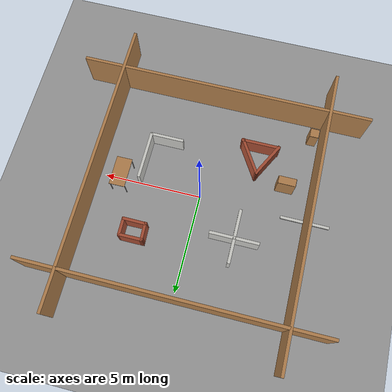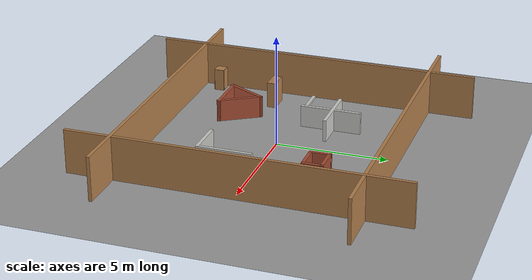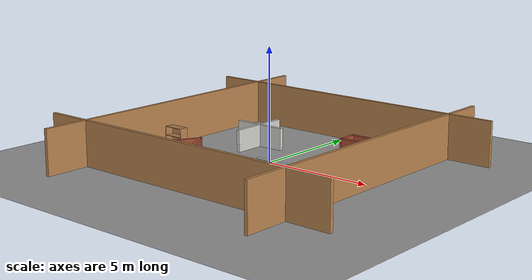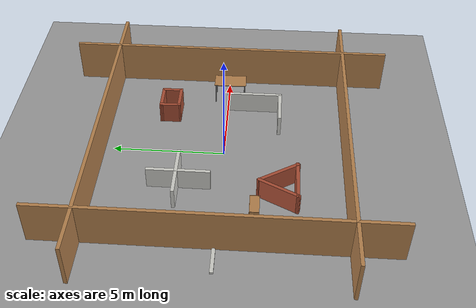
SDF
<sdf version="1.6">
 <world name="default">
  <light name="sun" type="directional">
   <pose>0 0 10 0 -0 0</pose>
   <diffuse>0.8 0.8 0.8 1</diffuse>
   <specular>0.2 0.2 0.2 1</specular>
   <attenuation>
    <range>1000</range>
    <constant>0.9</constant>
    <linear>0.01</linear>
    <quadratic>0.001</quadratic>
   </attenuation>
   <direction>0.5 0.1 -0.9</direction>
  </light>
  <scene><ambient>0.4 0.4 0.4 1</ambient><background>0.7 0.7 0.7 1</background><shadows>1</shadows></scene>
  <physics name="default_physics" default="0" type="ode">
   <max_step_size>0.01</max_step_size>
   <real_time_factor>1</real_time_factor>
   <real_time_update_rate>100</real_time_update_rate>
  </physics>
  <model name="ground_plane_0">
   <static>1</static>
   <link name="link">
    <collision name="collision">
     <geometry><plane><normal>0 0 1</normal><size>100 100</size></plane></geometry>
     <surface><friction><ode><mu>100</mu><mu2>50</mu2></ode></friction></surface>
    </collision>
    <visual name="visual">
     <cast_shadows>0</cast_shadows>
     <geometry><plane><normal>0 0 1</normal><size>100 100</size></plane></geometry>
     <material>
      <script><uri>file://media/materials/scripts/gazebo.material</uri><name>Gazebo/Grey</name></script>
     </material>
    </visual>
    <velocity_decay><linear>0</linear><angular>0</angular></velocity_decay>
   </link>
   <pose>0.497681 0 0 0 -0 0</pose>
  </model>
  <gravity>0 0 -9.8</gravity>
  <magnetic_field>6e-06 2.3e-05 -4.2e-05</magnetic_field>
  <atmosphere type="adiabatic"/>
  <spherical_coordinates>
   <surface_model>EARTH_WGS84</surface_model>
   <latitude_deg>0</latitude_deg>
   <longitude_deg>0</longitude_deg>
   <elevation>0</elevation>
   <heading_deg>0</heading_deg>
  </spherical_coordinates>
  <model name="Untitled">
   <pose>-0.03799 0.0344 0 0 -0 0</pose>
   <link name="Wall_11">
    <collision name="Wall_11_Collision">
     <geometry><box><size>2.5 0.15 1</size></box></geometry>
     <pose>0 0 0.5 0 -0 0</pose>
    </collision>
    <visual name="Wall_11_Visual">
     <pose>0 0 0.5 0 -0 0</pose>
     <geometry><box><size>2.5 0.15 1</size></box></geometry>
     <material>
      <script><uri>file://media/materials/scripts/gazebo.material</uri><name>Gazebo/CeilingTiled</name></script>
      <ambient>1 1 1 1</ambient>
     </material>
     <meta><layer>0</layer></meta>
    </visual>
    <pose>-2.152 1.857 0 0 -0 0</pose>
   </link>
   <link name="Wall_13">
    <collision name="Wall_13_Collision">
     <geometry><box><size>2.75 0.15 1</size></box></geometry>
     <pose>0 0 0.5 0 -0 0</pose>
    </collision>
    <visual name="Wall_13_Visual">
     <pose>0 0 0.5 0 -0 0</pose>
     <geometry><box><size>2.75 0.15 1</size></box></geometry>
     <material>
      <script><uri>file://media/materials/scripts/gazebo.material</uri><name>Gazebo/CeilingTiled</name></script>
      <ambient>1 1 1 1</ambient>
     </material>
     <meta><layer>0</layer></meta>
    </visual>
    <pose>-2.155 1.764 0 0 0 -1.5708</pose>
   </link>
   <link name="Wall_15">
    <collision name="Wall_15_Collision">
     <geometry><box><size>1.2678 0.15 1</size></box></geometry>
     <pose>0 0 0.5 0 -0 0</pose>
    </collision>
    <visual name="Wall_15_Visual">
     <pose>0 0 0.5 0 -0 0</pose>
     <geometry><box><size>1.2678 0.15 1</size></box></geometry>
     <material>
      <script><uri>file://media/materials/scripts/gazebo.material</uri><name>Gazebo/Bricks</name></script>
      <ambient>1 1 1 1</ambient>
     </material>
     <meta><layer>0</layer></meta>
    </visual>
    <pose>2.724 3.029 0 0 -0 0</pose>
   </link>
   <link name="Wall_16">
    <collision name="Wall_16_Collision">
     <geometry><box><size>0.965005 0.15 1</size></box></geometry>
     <pose>0 0 0.5 0 -0 0</pose>
    </collision>
    <visual name="Wall_16_Visual">
     <pose>0 0 0.5 0 -0 0</pose>
     <geometry><box><size>0.965005 0.15 1</size></box></geometry>
     <material>
      <script><uri>file://media/materials/scripts/gazebo.material</uri><name>Gazebo/Bricks</name></script>
      <ambient>1 1 1 1</ambient>
     </material>
     <meta><layer>0</layer></meta>
    </visual>
    <pose>3.2915 2.6215 0 0 0 -1.54994</pose>
   </link>
   <link name="Wall_17">
    <collision name="Wall_17_Collision">
     <geometry><box><size>1.25 0.15 1</size></box></geometry>
     <pose>0 0 0.5 0 -0 0</pose>
    </collision>
    <visual name="Wall_17_Visual">
     <pose>0 0 0.5 0 -0 0</pose>
     <geometry><box><size>1.25 0.15 1</size></box></geometry>
     <material>
      <script><uri>file://media/materials/scripts/gazebo.material</uri><name>Gazebo/Bricks</name></script>
      <ambient>1 1 1 1</ambient>
     </material>
     <meta><layer>0</layer></meta>
    </visual>
    <pose>2.75 2.214 0 0 -0 3.14159</pose>
   </link>
   <link name="Wall_18">
    <collision name="Wall_18_Collision">
     <geometry><box><size>0.965005 0.15 1</size></box></geometry>
     <pose>0 0 0.5 0 -0 0</pose>
    </collision>
    <visual name="Wall_18_Visual">
     <pose>0 0 0.5 0 -0 0</pose>
     <geometry><box><size>0.965005 0.15 1</size></box></geometry>
     <material>
      <script><uri>file://media/materials/scripts/gazebo.material</uri><name>Gazebo/Bricks</name></script>
      <ambient>1 1 1 1</ambient>
     </material>
     <meta><layer>0</layer></meta>
    </visual>
    <pose>2.1825 2.6215 0 0 -0 1.61372</pose>
   </link>
   <link name="Wall_24">
    <collision name="Wall_24_Collision">
     <geometry><box><size>1.97704 0.15 1</size></box></geometry>
     <pose>0 0 0.5 0 -0 0</pose>
    </collision>
    <visual name="Wall_24_Visual">
     <pose>0 0 0.5 0 -0 0</pose>
     <geometry><box><size>1.97704 0.15 1</size></box></geometry>
     <material>
      <script><uri>file://media/materials/scripts/gazebo.material</uri><name>Gazebo/Bricks</name></script>
      <ambient>1 1 1 1</ambient>
     </material>
     <meta><layer>0</layer></meta>
    </visual>
    <pose>-2.89576 -2.49088 0 0 -0 1.09459</pose>
   </link>
   <link name="Wall_25">
    <collision name="Wall_25_Collision">
     <geometry><box><size>2.06356 0.15 1</size></box></geometry>
     <pose>0 0 0.5 0 -0 0</pose>
    </collision>
    <visual name="Wall_25_Visual">
     <pose>0 0 0.5 0 -0 0</pose>
     <geometry><box><size>2.06356 0.15 1</size></box></geometry>
     <material>
      <script><uri>file://media/materials/scripts/gazebo.material</uri><name>Gazebo/Bricks</name></script>
      <ambient>1 1 1 1</ambient>
     </material>
     <meta><layer>0</layer></meta>
    </visual>
    <pose>-1.97077 -2.49088 0 0 0 -1.01325</pose>
   </link>
   <link name="Wall_26">
    <collision name="Wall_26_Collision">
     <geometry><box><size>2 0.15 1</size></box></geometry>
     <pose>0 0 0.5 0 -0 0</pose>
    </collision>
    <visual name="Wall_26_Visual">
     <pose>0 0 0.5 0 -0 0</pose>
     <geometry><box><size>2 0.15 1</size></box></geometry>
     <material>
      <script><uri>file://media/materials/scripts/gazebo.material</uri><name>Gazebo/Bricks</name></script>
      <ambient>1 1 1 1</ambient>
     </material>
     <meta><layer>0</layer></meta>
    </visual>
    <pose>-2.38953 -3.28527 0 0 -0 3.14159</pose>
   </link>
   <link name="Wall_28">
    <collision name="Wall_28_Collision">
     <geometry><box><size>1.75 0.15 1</size></box></geometry>
     <pose>0 0 0.5 0 -0 0</pose>
    </collision>
    <visual name="Wall_28_Visual">
     <pose>0 0 0.5 0 -0 0</pose>
     <geometry><box><size>1.75 0.15 1</size></box></geometry>
     <material>
      <script><uri>file://media/materials/scripts/gazebo.material</uri><name>Gazebo/CeilingTiled</name></script>
      <ambient>1 1 1 1</ambient>
     </material>
     <meta><layer>0</layer></meta>
    </visual>
    <pose>2.38813 -2.48047 0 0 -0 0</pose>
   </link>
   <link name="Wall_29">
    <collision name="Wall_29_Collision">
     <geometry><box><size>2.5 0.15 1</size></box></geometry>
     <pose>0 0 0.5 0 -0 0</pose>
    </collision>
    <visual name="Wall_29_Visual">
     <pose>0 0 0.5 0 -0 0</pose>
     <geometry><box><size>2.5 0.15 1</size></box></geometry>
     <material>
      <script><uri>file://media/materials/scripts/gazebo.material</uri><name>Gazebo/CeilingTiled</name></script>
      <ambient>1 1 1 1</ambient>
     </material>
     <meta><layer>0</layer></meta>
    </visual>
    <pose>3.20562 -1.28798 0 0 -0 1.5708</pose>
   </link>
   <link name="Wall_6">
    <collision name="Wall_6_Collision">
     <geometry><box><size>15 0.15 2</size></box></geometry>
     <pose>0 0 1 0 -0 0</pose>
    </collision>
    <visual name="Wall_6_Visual">
     <pose>0 0 1 0 -0 0</pose>
     <geometry><box><size>15 0.15 2</size></box></geometry>
     <material>
      <script><uri>file://media/materials/scripts/gazebo.material</uri><name>Gazebo/Wood</name></script>
      <ambient>1 1 1 1</ambient>
     </material>
     <meta><layer>0</layer></meta>
    </visual>
    <pose>0 5.425 0 0 -0 0</pose>
   </link>
   <link name="Wall_7">
    <collision name="Wall_7_Collision">
     <geometry><box><size>15 0.15 2</size></box></geometry>
     <pose>0 0 1 0 -0 0</pose>
    </collision>
    <visual name="Wall_7_Visual">
     <pose>0 0 1 0 -0 0</pose>
     <geometry><box><size>15 0.15 2</size></box></geometry>
     <material>
      <script><uri>file://media/materials/scripts/gazebo.material</uri><name>Gazebo/Wood</name></script>
      <ambient>1 1 1 1</ambient>
     </material>
     <meta><layer>0</layer></meta>
    </visual>
    <pose>5.425 0 0 0 0 -1.5708</pose>
   </link>
   <link name="Wall_8">
    <collision name="Wall_8_Collision">
     <geometry><box><size>15 0.15 2</size></box></geometry>
     <pose>0 0 1 0 -0 0</pose>
    </collision>
    <visual name="Wall_8_Visual">
     <pose>0 0 1 0 -0 0</pose>
     <geometry><box><size>15 0.15 2</size></box></geometry>
     <material>
      <script><uri>file://media/materials/scripts/gazebo.material</uri><name>Gazebo/Wood</name></script>
      <ambient>1 1 1 1</ambient>
     </material>
     <meta><layer>0</layer></meta>
    </visual>
    <pose>0 -5.425 0 0 -0 3.14159</pose>
   </link>
   <link name="Wall_9">
    <collision name="Wall_9_Collision">
     <geometry><box><size>15 0.15 2</size></box></geometry>
     <pose>0 0 1 0 -0 0</pose>
    </collision>
    <visual name="Wall_9_Visual">
     <pose>0 0 1 0 -0 0</pose>
     <geometry><box><size>15 0.15 2</size></box></geometry>
     <material>
      <script><uri>file://media/materials/scripts/gazebo.material</uri><name>Gazebo/Wood</name></script>
      <ambient>1 1 1 1</ambient>
     </material>
     <meta><layer>0</layer></meta>
    </visual>
    <pose>-5.425 0 0 0 -0 1.5708</pose>
   </link>
   <link name="Wall_2">
    <collision name="Wall_2_Collision"><geometry><box><size>0.15 2.5 0.15</size></box></geometry></collision>
    <visual name="Wall_2_Visual">
     <geometry><box><size>0.15 2.5 0.15</size></box></geometry>
     <material>
      <script><uri>file://media/materials/scripts/gazebo.material</uri><name>Gazebo/CeilingTiled</name></script>
      <ambient>1 1 1 1</ambient>
     </material>
     <meta><layer>0</layer></meta>
    </visual>
    <pose>-5.425 0 0 0 -0 1.5708</pose>
   </link>
   <static>1</static>
  </model>
  <model name="cabinet">
   <static>1</static>
   <link name="cabinet_bottom_plate">
    <inertial>
     <pose>0 0 -1 0 -0 0</pose>
     <inertia><ixx>2.05</ixx><ixy>0</ixy><ixz>0</ixz><iyy>2.05</iyy><iyz>0</iyz><izz>2.05</izz></inertia>
     <mass>25</mass>
    </inertial>
    <collision name="cabinet_bottom_plate_geom">
     <pose>0 0 0.01 0 -0 0</pose>
     <geometry><box><size>0.45 0.45 0.02</size></box></geometry>
    </collision>
    <visual name="cabinet_bottom_plate_geom_visual">
     <pose>0 0 0.01 0 -0 0</pose>
     <geometry><box><size>0.45 0.45 0.02</size></box></geometry>
     <material>
      <script><uri>file://media/materials/scripts/gazebo.material</uri><name>Gazebo/Wood</name></script>
     </material>
    </visual>
    <collision name="cabinet_bottom_plate_geom_cabinet_back_plate">
     <pose>0.235 0 0.51 0 -0 0</pose>
     <geometry><box><size>0.02 0.45 1.02</size></box></geometry>
    </collision>
    <visual name="cabinet_bottom_plate_geom_cabinet_back_plate_visual">
     <pose>0.235 0 0.51 0 -0 0</pose>
     <geometry><box><size>0.02 0.45 1.02</size></box></geometry>
     <material>
      <script><uri>file://media/materials/scripts/gazebo.material</uri><name>Gazebo/Wood</name></script>
     </material>
    </visual>
    <collision name="cabinet_bottom_plate_geom_cabinet_left_plate">
     <pose>0 0.235 0.51 0 -0 0</pose>
     <geometry><box><size>0.45 0.02 1.02</size></box></geometry>
    </collision>
    <visual name="cabinet_bottom_plate_geom_cabinet_left_plate_visual">
     <pose>0 0.235 0.51 0 -0 0</pose>
     <geometry><box><size>0.45 0.02 1.02</size></box></geometry>
     <material>
      <script><uri>file://media/materials/scripts/gazebo.material</uri><name>Gazebo/Wood</name></script>
     </material>
    </visual>
    <collision name="cabinet_bottom_plate_geom_cabinet_middle_plate">
     <pose>0 0 0.51 0 -0 0</pose>
     <geometry><box><size>0.45 0.45 0.02</size></box></geometry>
    </collision>
    <visual name="cabinet_bottom_plate_geom_cabinet_middle_plate_visual">
     <pose>0 0 0.51 0 -0 0</pose>
     <geometry><box><size>0.45 0.45 0.02</size></box></geometry>
     <material>
      <script><uri>file://media/materials/scripts/gazebo.material</uri><name>Gazebo/Wood</name></script>
     </material>
    </visual>
    <collision name="cabinet_bottom_plate_geom_cabinet_right_plate">
     <pose>0 -0.235 0.51 0 -0 0</pose>
     <geometry><box><size>0.45 0.02 1.02</size></box></geometry>
    </collision>
    <visual name="cabinet_bottom_plate_geom_cabinet_right_plate_visual">
     <pose>0 -0.235 0.51 0 -0 0</pose>
     <geometry><box><size>0.45 0.02 1.02</size></box></geometry>
     <material>
      <script><uri>file://media/materials/scripts/gazebo.material</uri><name>Gazebo/Wood</name></script>
     </material>
    </visual>
    <collision name="cabinet_bottom_plate_geom_cabinet_top_plate">
     <pose>0 0 1.01 0 -0 0</pose>
     <geometry><box><size>0.45 0.45 0.02</size></box></geometry>
    </collision>
    <visual name="cabinet_bottom_plate_geom_cabinet_top_plate_visual">
     <pose>0 0 1.01 0 -0 0</pose>
     <geometry><box><size>0.45 0.45 0.02</size></box></geometry>
     <material>
      <script><uri>file://media/materials/scripts/gazebo.material</uri><name>Gazebo/Wood</name></script>
     </material>
    </visual>
   </link>
   <pose>-5 -4.5 0 0 -0 0</pose>
  </model>
  <model name="bookshelf">
   <static>1</static>
   <link name="link">
    <inertial><mass>1</mass></inertial>
    <collision name="back">
     <pose>0 0.005 0.6 0 -0 0</pose>
     <geometry><box><size>0.9 0.01 1.2</size></box></geometry>
    </collision>
    <visual name="visual1">
     <pose>0 0.005 0.6 0 -0 0</pose>
     <geometry><box><size>0.9 0.01 1.2</size></box></geometry>
     <material>
      <script><uri>file://media/materials/scripts/gazebo.material</uri><name>Gazebo/Wood</name></script>
     </material>
    </visual>
    <collision name="left_side">
     <pose>0.45 -0.195 0.6 0 -0 0</pose>
     <geometry><box><size>0.02 0.4 1.2</size></box></geometry>
    </collision>
    <visual name="visual2">
     <pose>0.45 -0.195 0.6 0 -0 0</pose>
     <geometry><box><size>0.02 0.4 1.2</size></box></geometry>
     <material>
      <script><uri>file://media/materials/scripts/gazebo.material</uri><name>Gazebo/Wood</name></script>
     </material>
    </visual>
    <collision name="right_side">
     <pose>-0.45 -0.195 0.6 0 -0 0</pose>
     <geometry><box><size>0.02 0.4 1.2</size></box></geometry>
    </collision>
    <visual name="visual3">
     <pose>-0.45 -0.195 0.6 0 -0 0</pose>
     <geometry><box><size>0.02 0.4 1.2</size></box></geometry>
     <material>
      <script><uri>file://media/materials/scripts/gazebo.material</uri><name>Gazebo/Wood</name></script>
     </material>
    </visual>
    <collision name="bottom">
     <pose>0 -0.195 0.03 0 -0 0</pose>
     <geometry><box><size>0.88 0.4 0.06</size></box></geometry>
    </collision>
    <visual name="visual4">
     <pose>0 -0.195 0.03 0 -0 0</pose>
     <geometry><box><size>0.88 0.4 0.06</size></box></geometry>
     <material>
      <script><uri>file://media/materials/scripts/gazebo.material</uri><name>Gazebo/Wood</name></script>
     </material>
    </visual>
    <collision name="top">
     <pose>0 -0.195 1.19 0 -0 0</pose>
     <geometry><box><size>0.88 0.4 0.02</size></box></geometry>
    </collision>
    <visual name="visual5">
     <pose>0 -0.195 1.19 0 -0 0</pose>
     <geometry><box><size>0.88 0.4 0.02</size></box></geometry>
     <material>
      <script><uri>file://media/materials/scripts/gazebo.material</uri><name>Gazebo/Wood</name></script>
     </material>
    </visual>
    <collision name="low_shelf">
     <pose>0 -0.195 0.43 0 -0 0</pose>
     <geometry><box><size>0.88 0.4 0.02</size></box></geometry>
    </collision>
    <visual name="visual6">
     <pose>0 -0.195 0.43 0 -0 0</pose>
     <geometry><box><size>0.88 0.4 0.02</size></box></geometry>
     <material>
      <script><uri>file://media/materials/scripts/gazebo.material</uri><name>Gazebo/Wood</name></script>
     </material>
    </visual>
    <collision name="high_shelf">
     <pose>0 -0.195 0.8 0 -0 0</pose>
     <geometry><box><size>0.88 0.4 0.02</size></box></geometry>
    </collision>
    <visual name="visual7">
     <pose>0 -0.195 0.8 0 -0 0</pose>
     <geometry><box><size>0.88 0.4 0.02</size></box></geometry>
     <material>
      <script><uri>file://media/materials/scripts/gazebo.material</uri><name>Gazebo/Wood</name></script>
     </material>
    </visual>
   </link>
   <pose>-4.1 -1.3 0 0 -0 0</pose>
  </model>
  <model name="table">
   <static>1</static>
   <link name="link">
    <collision name="surface">
     <pose>0 0 1 0 -0 0</pose>
     <geometry><box><size>1.5 0.8 0.03</size></box></geometry>
     <surface><friction><ode><mu>0.6</mu><mu2>0.6</mu2></ode></friction></surface>
    </collision>
    <visual name="visual1">
     <pose>0 0 1 0 -0 0</pose>
     <geometry><box><size>1.5 0.8 0.03</size></box></geometry>
     <material>
      <script><uri>file://media/materials/scripts/gazebo.material</uri><name>Gazebo/Wood</name></script>
     </material>
    </visual>
    <collision name="front_left_leg">
     <pose>0.68 0.38 0.5 0 -0 0</pose>
     <geometry><cylinder><radius>0.02</radius><length>1</length></cylinder></geometry>
    </collision>
    <visual name="front_left_leg">
     <pose>0.68 0.38 0.5 0 -0 0</pose>
     <geometry><cylinder><radius>0.02</radius><length>1</length></cylinder></geometry>
     <material>
      <script><uri>file://media/materials/scripts/gazebo.material</uri><name>Gazebo/Grey</name></script>
     </material>
    </visual>
    <collision name="front_right_leg">
     <pose>0.68 -0.38 0.5 0 -0 0</pose>
     <geometry><cylinder><radius>0.02</radius><length>1</length></cylinder></geometry>
    </collision>
    <visual name="front_right_leg">
     <pose>0.68 -0.38 0.5 0 -0 0</pose>
     <geometry><cylinder><radius>0.02</radius><length>1</length></cylinder></geometry>
     <material>
      <script><uri>file://media/materials/scripts/gazebo.material</uri><name>Gazebo/Grey</name></script>
     </material>
    </visual>
    <collision name="back_right_leg">
     <pose>-0.68 -0.38 0.5 0 -0 0</pose>
     <geometry><cylinder><radius>0.02</radius><length>1</length></cylinder></geometry>
    </collision>
    <visual name="back_right_leg">
     <pose>-0.68 -0.38 0.5 0 -0 0</pose>
     <geometry><cylinder><radius>0.02</radius><length>1</length></cylinder></geometry>
     <material>
      <script><uri>file://media/materials/scripts/gazebo.material</uri><name>Gazebo/Grey</name></script>
     </material>
    </visual>
    <collision name="back_left_leg">
     <pose>-0.68 0.38 0.5 0 -0 0</pose>
     <geometry><cylinder><radius>0.02</radius><length>1</length></cylinder></geometry>
    </collision>
    <visual name="back_left_leg">
     <pose>-0.68 0.38 0.5 0 -0 0</pose>
     <geometry><cylinder><radius>0.02</radius><length>1</length></cylinder></geometry>
     <material>
      <script><uri>file://media/materials/scripts/gazebo.material</uri><name>Gazebo/Grey</name></script>
     </material>
    </visual>
   </link>
   <pose>4.1 -0.05534 0 0 -0 1.58</pose>
  </model>
 </world>
</sdf>
